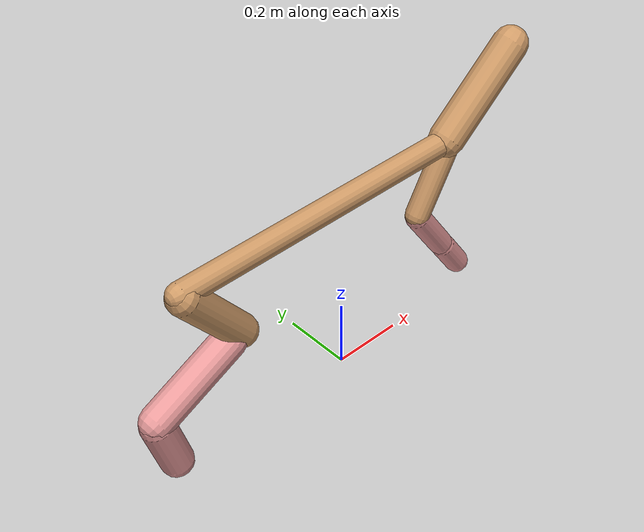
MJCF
<mujoco model="cheetah">
  <compiler angle="radian" coordinate="local" inertiafromgeom="true" settotalmass="14" />
  <default>
    <joint armature=".1" damping=".01" limited="true" solimplimit="0 .8 .03" solreflimit=".02 1" stiffness="8" />
    <geom conaffinity="0" condim="3" contype="1" friction="0.8 .1 .1" rgba="0.8 0.6 .4 1" solimp="0.0 0.8 0.01" solref="0.02 1" />
    <motor ctrllimited="true" ctrlrange="-1 1" />
  </default>
  <size nstack="300000" nuser_geom="1" />
  <option gravity="0 0 -9.81" timestep="0.01" />
  <worldbody>
    <body name="torso" pos="0.0 0.0 0.5484089127199359">
      <joint armature="0" axis="1 0 0" damping="0" limited="false" name="ignorex" pos="0 0 0" stiffness="0" type="slide" />
      <joint armature="0" axis="0 0 1" damping="0" limited="false" name="ignorez" pos="0 0 0" stiffness="0" type="slide" />
      <joint armature="0" axis="0 1 0" damping="0" limited="false" name="ignorey" pos="0 0 0" stiffness="0" type="hinge" />
      <geom fromto="-0.5 0.0 0.0 0.3907856818106676 0.0 0.0" name="torso" size="0.03317219832360831" type="capsule" />
      <geom axisangle="0 1 0 .87" name="head" pos="0.4907856818106676 0.0 0.1" size="0.04875135466487362 0.15" type="capsule" />

      <body name="bthigh" pos="-.5 0 0">
        <joint axis="0 1 0" damping="6" name="bthigh" pos="0 0 0" range="-.52 1.05" stiffness="240" type="hinge" />
        <geom axisangle="0 1 0 -3.8" name="bthigh" pos="0.0886424796705795 0.0 -0.11523522357175335" size="0.04467376158308401 0.12637228164778871" type="capsule" />
        <body name="bshin" pos="0.137284959341159 0.0 -0.2204704471435067">
          <joint axis="0 1 0" damping="4.5" name="bshin" pos="0 0 0" range="-.785 .785" stiffness="180" type="hinge" />
          <geom axisangle="0 1 0 -2.03" name="bshin" pos="-0.12276434020637322 0.0 -0.06138217010318661" rgba="0.9 0.6 0.6 1" size="0.04467376158308401 0.13072994653219525" type="capsule" />
          <body name="bfoot" pos="-0.24552868041274645 0.0 -0.12276434020637322">
            <joint axis="0 1 0" damping="3" name="bfoot" pos="0 0 0" range="-.4 .785" stiffness="120" type="hinge" />
            <geom axisangle="0 1 0 -.27" name="bfoot" pos="0.02643193712180256 0.0 -0.08546326336049495" rgba="0.9 0.6 0.6 1" size="0.04467376158308401 0.08192409982684234" type="capsule" />
            <inertial mass="10" />
          </body>
        </body>
      </body>
      <body name="fthigh" pos="0.39078568181066764 0.0 0.0">
        <joint axis="0 1 0" damping="4.5" name="fthigh" pos="0 0 0" range="-1.5 0.8" stiffness="180" type="hinge" />
        <geom axisangle="0 1 0 .52" name="fthigh" pos="-0.05806852424955676 0.0 -0.09954604157066872" size="0.033750810450724186 0.10932037734649838" type="capsule" />
        <body name="fshin" pos="-0.11613704849911352 0.0 -0.19909208314133744">
          <joint axis="0 1 0" damping="3" name="fshin" pos="0 0 0" range="-1.2 1.1" stiffness="120" type="hinge" />
          <geom axisangle="0 1 0 -.6" name="fshin" pos="0.05395034052243795 0.0 -0.07470047149260639" rgba="0.9 0.6 0.6 1" size="0.033750810450724186 0.0871275187874348" type="capsule" />
          <body name="ffoot" pos="0.1079006810448759 0.0 -0.14940094298521278">
            <joint axis="0 1 0" damping="1.5" name="ffoot" pos="0 0 0" range="-3.1 -0.3" stiffness="60" type="hinge" />
            <geom axisangle="0 1 0 -.6" name="ffoot" pos="0.038260560152989426 0.0 -0.05951642690465022" rgba="0.9 0.6 0.6 1" size="0.033750810450724186 0.05753704070868336" type="capsule" />
            <inertial mass="10" />
          </body>
        </body>
      </body>
    </body>
  </worldbody>
  <actuator>
    <motor gear="120" joint="bthigh" name="bthigh" />
    <motor gear="90" joint="bshin" name="bshin" />
    <motor gear="60" joint="bfoot" name="bfoot" />
    <motor gear="120" joint="fthigh" name="fthigh" />
    <motor gear="60" joint="fshin" name="fshin" />
    <motor gear="30" joint="ffoot" name="ffoot" />
  </actuator>
</mujoco>
